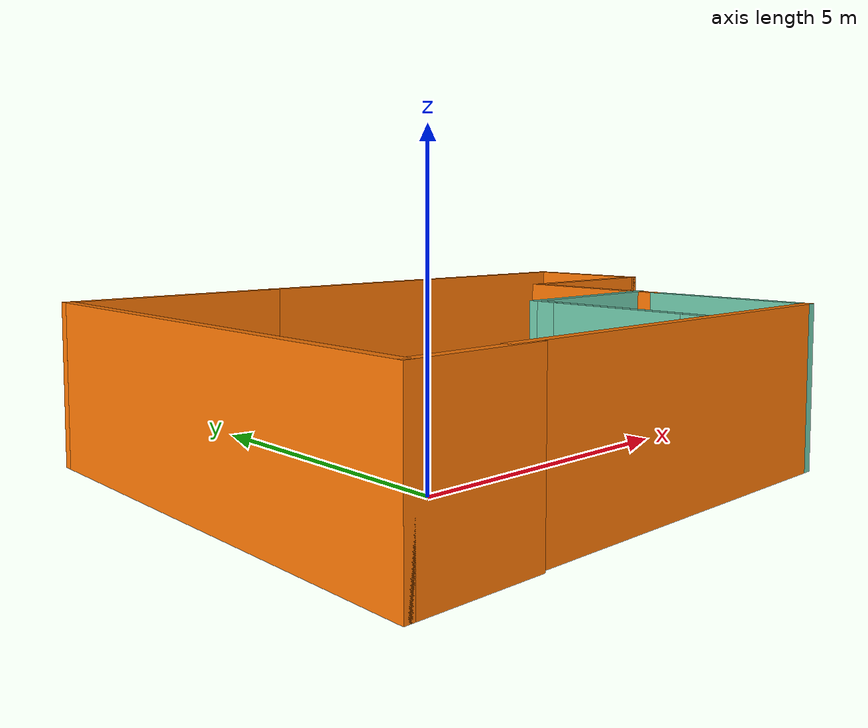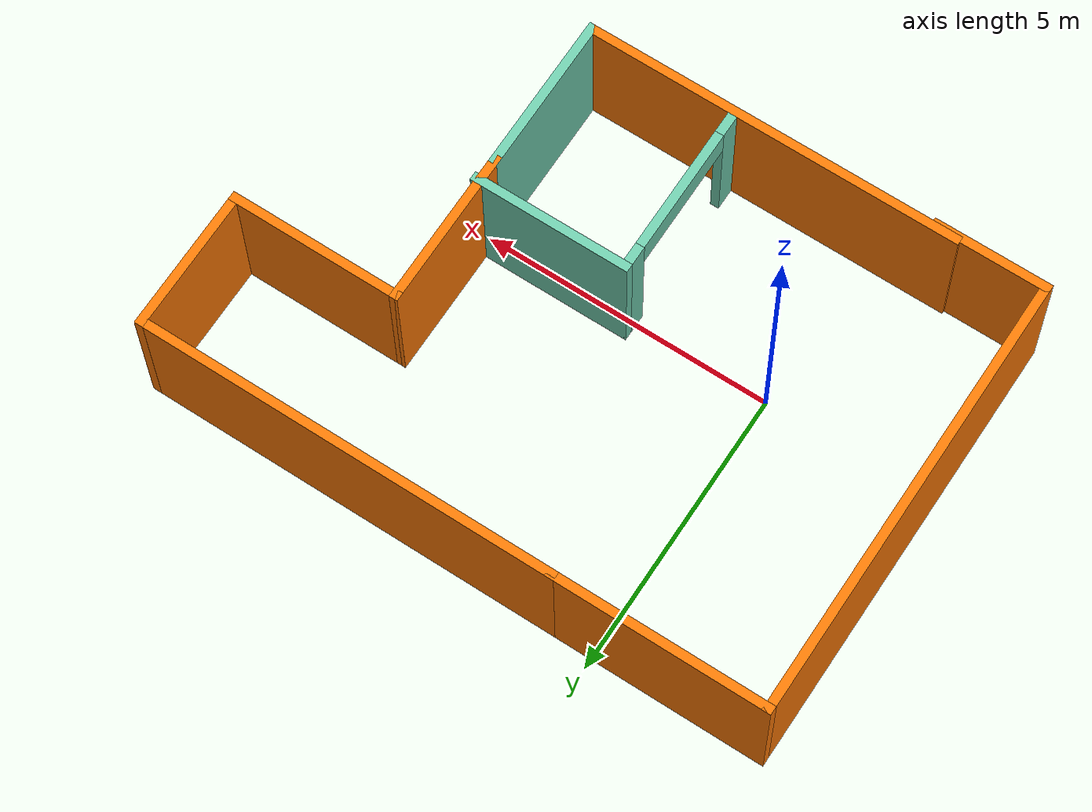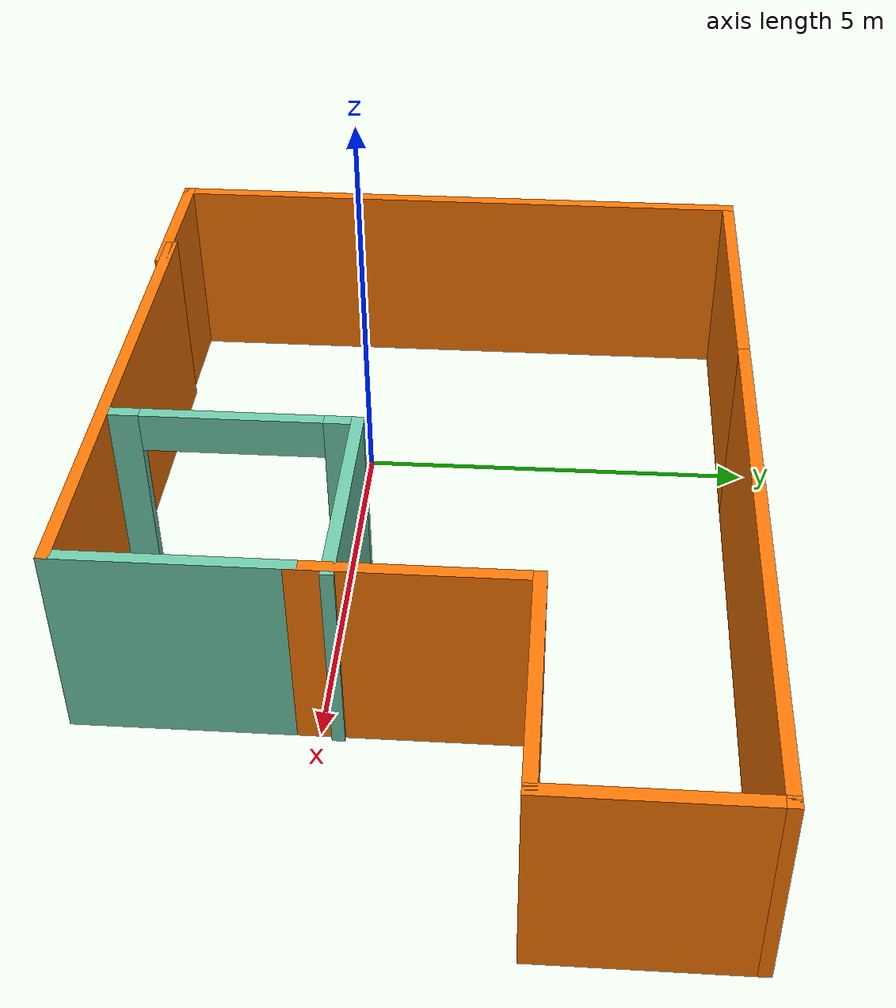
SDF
<?xml version='1.0'?>
<sdf version='1.6'>
  <model name='building'>
    <pose frame=''>2.46 0.96 0 0 -0 0</pose>
    <link name='Wall_0'>
      <collision name='Wall_0_Collision'>
        <geometry>
          <box>
            <size>6.5 0.15 2.5</size>
          </box>
        </geometry>
        <pose frame=''>0 0 1.25 0 -0 0</pose>
      </collision>
      <visual name='Wall_0_Visual'>
        <pose frame=''>0 0 1.25 0 -0 0</pose>
        <geometry>
          <box>
            <size>6.5 0.15 2.5</size>
          </box>
        </geometry>
        <material>
          <script>
            <uri>file://media/materials/scripts/gazebo.material</uri>
            <name>Gazebo/Grey</name>
          </script>
          <ambient>0.996078 0.47451 0.0196078 1</ambient>
        </material>
        <meta>
          <layer>0</layer>
        </meta>
      </visual>
      <pose frame=''>-0.675 -3.75 0 0 -0 0</pose>
    </link>
    <link name='Wall_1'>
      <collision name='Wall_1_Collision'>
        <geometry>
          <box>
            <size>2.75 0.15 2.5</size>
          </box>
        </geometry>
        <pose frame=''>0 0 1.25 0 -0 0</pose>
      </collision>
      <visual name='Wall_1_Visual'>
        <pose frame=''>0 0 1.25 0 -0 0</pose>
        <geometry>
          <box>
            <size>2.75 0.15 2.5</size>
          </box>
        </geometry>
        <material>
          <script>
            <uri>file://media/materials/scripts/gazebo.material</uri>
            <name>Gazebo/Grey</name>
          </script>
          <ambient>0.435294 0.796078 0.67451 1</ambient>
        </material>
        <meta>
          <layer>0</layer>
        </meta>
      </visual>
      <pose frame=''>2.5 -2.45 0 0 -0 1.5708</pose>
    </link>
    <link name='Wall_12'>
      <collision name='Wall_12_Collision'>
        <geometry>
          <box>
            <size>2.75 0.15 2.5</size>
          </box>
        </geometry>
        <pose frame=''>0 0 1.25 0 -0 0</pose>
      </collision>
      <visual name='Wall_12_Visual'>
        <pose frame=''>0 0 1.25 0 -0 0</pose>
        <geometry>
          <box>
            <size>2.75 0.15 2.5</size>
          </box>
        </geometry>
        <material>
          <script>
            <uri>file://media/materials/scripts/gazebo.material</uri>
            <name>Gazebo/Grey</name>
          </script>
          <ambient>0.435294 0.796078 0.67451 1</ambient>
        </material>
        <meta>
          <layer>0</layer>
        </meta>
      </visual>
      <pose frame=''>1.25632 -0.751529 0 0 -0 3.14159</pose>
    </link>
    <link name='Wall_13'>
      <pose frame=''>-0.043677 -2.17653 0 0 0 -1.5708</pose>
      <visual name='Wall_13_Visual_0'>
        <pose frame=''>-1.26536 0 1.25 0 -0 0</pose>
        <geometry>
          <box>
            <size>0.46929 0.15 2.5</size>
          </box>
        </geometry>
        <material>
          <script>
            <uri>file://media/materials/scripts/gazebo.material</uri>
            <name>Gazebo/Grey</name>
          </script>
          <ambient>0.435294 0.796078 0.67451 1</ambient>
        </material>
        <meta>
          <layer>0</layer>
        </meta>
      </visual>
      <collision name='Wall_13_Collision_0'>
        <geometry>
          <box>
            <size>0.46929 0.15 2.5</size>
          </box>
        </geometry>
        <pose frame=''>-1.26536 0 1.25 0 -0 0</pose>
      </collision>
      <visual name='Wall_13_Visual_1'>
        <pose frame=''>1.31786 0 1.25 0 -0 0</pose>
        <geometry>
          <box>
            <size>0.364274 0.15 2.5</size>
          </box>
        </geometry>
        <material>
          <script>
            <uri>file://media/materials/scripts/gazebo.material</uri>
            <name>Gazebo/Grey</name>
          </script>
          <ambient>0.435294 0.796078 0.67451 1</ambient>
        </material>
        <meta>
          <layer>0</layer>
        </meta>
      </visual>
      <collision name='Wall_13_Collision_1'>
        <geometry>
          <box>
            <size>0.364274 0.15 2.5</size>
          </box>
        </geometry>
        <pose frame=''>1.31786 0 1.25 0 -0 0</pose>
      </collision>
      <visual name='Wall_13_Visual_2'>
        <pose frame=''>0.052508 0 2.25 0 -0 0</pose>
        <geometry>
          <box>
            <size>2.16643 0.15 0.5</size>
          </box>
        </geometry>
        <material>
          <script>
            <uri>file://media/materials/scripts/gazebo.material</uri>
            <name>Gazebo/Grey</name>
          </script>
          <ambient>0.435294 0.796078 0.67451 1</ambient>
        </material>
        <meta>
          <layer>0</layer>
        </meta>
      </visual>
      <collision name='Wall_13_Collision_2'>
        <geometry>
          <box>
            <size>2.16643 0.15 0.5</size>
          </box>
        </geometry>
        <pose frame=''>0.052508 0 2.25 0 -0 0</pose>
      </collision>
    </link>
    <link name='Wall_2'>
      <collision name='Wall_2_Collision'>
        <geometry>
          <box>
            <size>2.75 0.15 2.5</size>
          </box>
        </geometry>
        <pose frame=''>0 0 1.25 0 -0 0</pose>
      </collision>
      <visual name='Wall_2_Visual'>
        <pose frame=''>0 0 1.25 0 -0 0</pose>
        <geometry>
          <box>
            <size>2.75 0.15 2.5</size>
          </box>
        </geometry>
        <material>
          <script>
            <uri>file://media/materials/scripts/gazebo.material</uri>
            <name>Gazebo/Grey</name>
          </script>
          <ambient>0.996078 0.47451 0.0196078 1</ambient>
        </material>
        <meta>
          <layer>0</layer>
        </meta>
      </visual>
      <pose frame=''>2.5 0.15 0 0 -0 1.5708</pose>
    </link>
    <link name='Wall_3'>
      <collision name='Wall_3_Collision'>
        <geometry>
          <box>
            <size>3 0.15 2.5</size>
          </box>
        </geometry>
        <pose frame=''>0 0 1.25 0 -0 0</pose>
      </collision>
      <visual name='Wall_3_Visual'>
        <pose frame=''>0 0 1.25 0 -0 0</pose>
        <geometry>
          <box>
            <size>3 0.15 2.5</size>
          </box>
        </geometry>
        <material>
          <script>
            <uri>file://media/materials/scripts/gazebo.material</uri>
            <name>Gazebo/Grey</name>
          </script>
          <ambient>0.996078 0.47451 0.0196078 1</ambient>
        </material>
        <meta>
          <layer>0</layer>
        </meta>
      </visual>
      <pose frame=''>3.925 1.45 0 0 -0 0</pose>
    </link>
    <link name='Wall_4'>
      <collision name='Wall_4_Collision'>
        <geometry>
          <box>
            <size>2.5 0.15 2.5</size>
          </box>
        </geometry>
        <pose frame=''>0 0 1.25 0 -0 0</pose>
      </collision>
      <visual name='Wall_4_Visual'>
        <pose frame=''>0 0 1.25 0 -0 0</pose>
        <geometry>
          <box>
            <size>2.5 0.15 2.5</size>
          </box>
        </geometry>
        <material>
          <script>
            <uri>file://media/materials/scripts/gazebo.material</uri>
            <name>Gazebo/Grey</name>
          </script>
          <ambient>0.996078 0.47451 0.0196078 1</ambient>
        </material>
        <meta>
          <layer>0</layer>
        </meta>
      </visual>
      <pose frame=''>5.35 2.625 0 0 -0 1.5708</pose>
    </link>
    <link name='Wall_5'>
      <collision name='Wall_5_Collision'>
        <geometry>
          <box>
            <size>7.25 0.15 2.5</size>
          </box>
        </geometry>
        <pose frame=''>0 0 1.25 0 -0 0</pose>
      </collision>
      <visual name='Wall_5_Visual'>
        <pose frame=''>0 0 1.25 0 -0 0</pose>
        <geometry>
          <box>
            <size>7.25 0.15 2.5</size>
          </box>
        </geometry>
        <material>
          <script>
            <uri>file://media/materials/scripts/gazebo.material</uri>
            <name>Gazebo/Grey</name>
          </script>
          <ambient>0.996078 0.47451 0.0196078 1</ambient>
        </material>
        <meta>
          <layer>0</layer>
        </meta>
      </visual>
      <pose frame=''>1.8 3.8 0 0 -0 3.14159</pose>
    </link>
    <link name='Wall_6'>
      <collision name='Wall_6_Collision'>
        <geometry>
          <box>
            <size>3.75 0.15 2.5</size>
          </box>
        </geometry>
        <pose frame=''>0 0 1.25 0 -0 0</pose>
      </collision>
      <visual name='Wall_6_Visual'>
        <pose frame=''>0 0 1.25 0 -0 0</pose>
        <geometry>
          <box>
            <size>3.75 0.15 2.5</size>
          </box>
        </geometry>
        <material>
          <script>
            <uri>file://media/materials/scripts/gazebo.material</uri>
            <name>Gazebo/Grey</name>
          </script>
          <ambient>0.996078 0.47451 0.0196078 1</ambient>
        </material>
        <meta>
          <layer>0</layer>
        </meta>
      </visual>
      <pose frame=''>-3.55 3.8 0 0 -0 3.14159</pose>
    </link>
    <link name='Wall_7'>
      <collision name='Wall_7_Collision'>
        <geometry>
          <box>
            <size>7.75 0.15 2.5</size>
          </box>
        </geometry>
        <pose frame=''>0 0 1.25 0 -0 0</pose>
      </collision>
      <visual name='Wall_7_Visual'>
        <pose frame=''>0 0 1.25 0 -0 0</pose>
        <geometry>
          <box>
            <size>7.75 0.15 2.5</size>
          </box>
        </geometry>
        <material>
          <script>
            <uri>file://media/materials/scripts/gazebo.material</uri>
            <name>Gazebo/Grey</name>
          </script>
          <ambient>0.996078 0.47451 0.0196078 1</ambient>
        </material>
        <meta>
          <layer>0</layer>
        </meta>
      </visual>
      <pose frame=''>-5.35 0 0 0 0 -1.5708</pose>
    </link>
    <link name='Wall_8'>
      <collision name='Wall_8_Collision'>
        <geometry>
          <box>
            <size>2 0.15 2.5</size>
          </box>
        </geometry>
        <pose frame=''>0 0 1.25 0 -0 0</pose>
      </collision>
      <visual name='Wall_8_Visual'>
        <pose frame=''>0 0 1.25 0 -0 0</pose>
        <geometry>
          <box>
            <size>2 0.15 2.5</size>
          </box>
        </geometry>
        <material>
          <script>
            <uri>file://media/materials/scripts/gazebo.material</uri>
            <name>Gazebo/Grey</name>
          </script>
          <ambient>0.996078 0.47451 0.0196078 1</ambient>
        </material>
        <meta>
          <layer>0</layer>
        </meta>
      </visual>
      <pose frame=''>-4.425 -3.8 0 0 -0 0</pose>
    </link>
    <static>1</static>
  </model>
</sdf>
